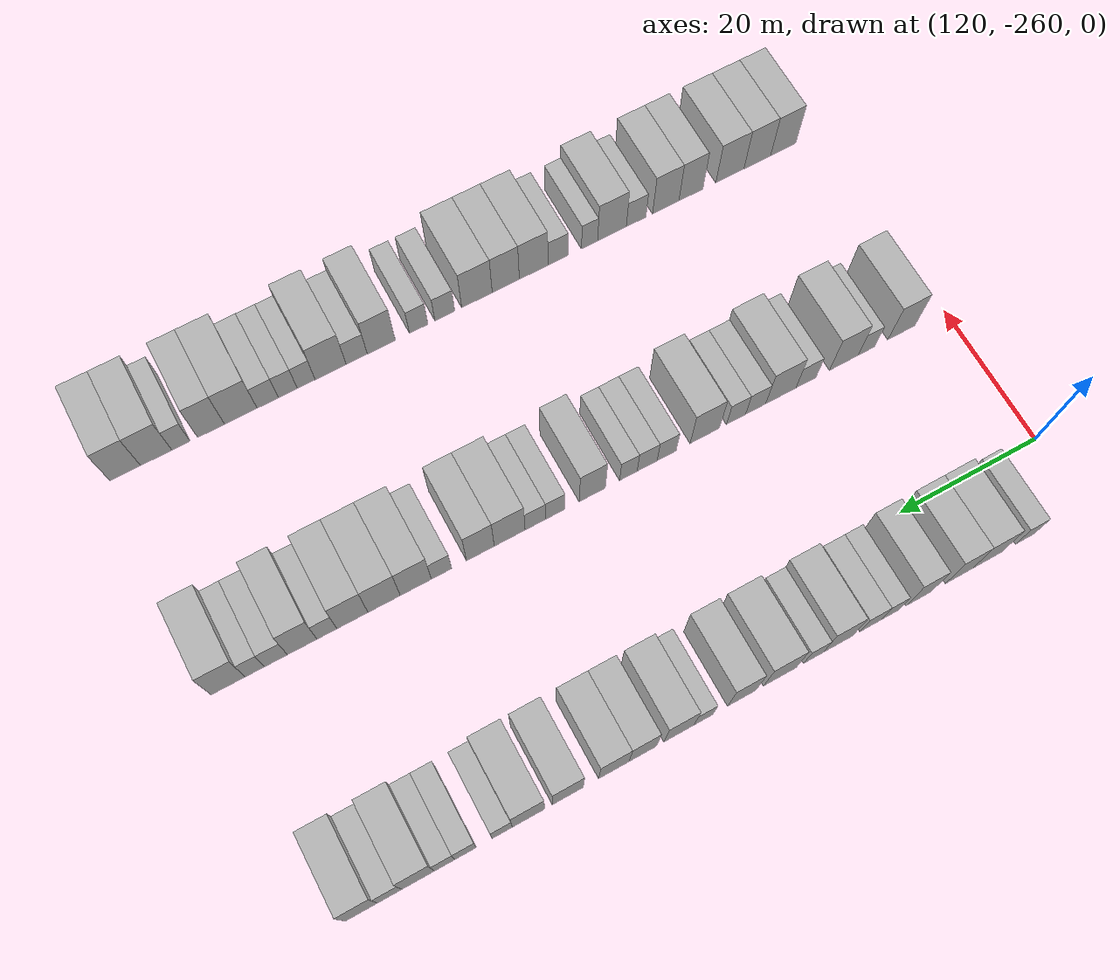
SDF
<sdf version="1.6">
 <world name="default">
  <model name="building_736">
   <static>1</static>
   <pose>115.0000 -251.4883 0 0.000000 0.000000 0.000000</pose>
   <link name="link">
    <pose>0 0 3.00 0 0 0</pose>
    <collision name="collision"><geometry><box><size>10.0000 2.7993 6.0000</size></box></geometry></collision>
    <visual name="visual">
     <cast_shadows>0</cast_shadows>
     <geometry><box><size>10.0000 2.7993 6.0000</size></box></geometry>
     <material>
      <script>
       <uri>model://HANNAS_wall/materials/scripts</uri>
       <uri>model://HANNAS_wall/materials/textures</uri>
       <name>vrc/HANNAS_wall</name>
      </script>
     </material>
    </visual>
   </link>
  </model>
  <model name="building_737">
   <static>1</static>
   <pose>115.0000 -245.9682 0 0.000000 0.000000 0.000000</pose>
   <link name="link">
    <pose>0 0 4.50 0 0 0</pose>
    <collision name="collision"><geometry><box><size>10.0000 4.2410 9.0000</size></box></geometry></collision>
    <visual name="visual">
     <cast_shadows>0</cast_shadows>
     <geometry><box><size>10.0000 4.2410 9.0000</size></box></geometry>
     <material>
      <script>
       <uri>model://HANNAS_wall/materials/scripts</uri>
       <uri>model://HANNAS_wall/materials/textures</uri>
       <name>vrc/HANNAS_wall</name>
      </script>
     </material>
    </visual>
   </link>
  </model>
  <model name="building_738">
   <static>1</static>
   <pose>115.0000 -241.8902 0 0.000000 0.000000 0.000000</pose>
   <link name="link">
    <pose>0 0 4.50 0 0 0</pose>
    <collision name="collision"><geometry><box><size>10.0000 3.9150 9.0000</size></box></geometry></collision>
    <visual name="visual">
     <cast_shadows>0</cast_shadows>
     <geometry><box><size>10.0000 3.9150 9.0000</size></box></geometry>
     <material>
      <script>
       <uri>model://HANNAS_wall/materials/scripts</uri>
       <uri>model://HANNAS_wall/materials/textures</uri>
       <name>vrc/HANNAS_wall</name>
      </script>
     </material>
    </visual>
   </link>
  </model>
  <model name="building_739">
   <static>1</static>
   <pose>115.0000 -236.1199 0 0.000000 0.000000 0.000000</pose>
   <link name="link">
    <pose>0 0 4.50 0 0 0</pose>
    <collision name="collision"><geometry><box><size>10.0000 3.6255 9.0000</size></box></geometry></collision>
    <visual name="visual">
     <cast_shadows>0</cast_shadows>
     <geometry><box><size>10.0000 3.6255 9.0000</size></box></geometry>
     <material>
      <script>
       <uri>model://HANNAS_wall/materials/scripts</uri>
       <uri>model://HANNAS_wall/materials/textures</uri>
       <name>vrc/HANNAS_wall</name>
      </script>
     </material>
    </visual>
   </link>
  </model>
  <model name="building_740">
   <static>1</static>
   <pose>115.0000 -232.0513 0 0.000000 0.000000 0.000000</pose>
   <link name="link">
    <pose>0 0 3.00 0 0 0</pose>
    <collision name="collision"><geometry><box><size>10.0000 2.5117 6.0000</size></box></geometry></collision>
    <visual name="visual">
     <cast_shadows>0</cast_shadows>
     <geometry><box><size>10.0000 2.5117 6.0000</size></box></geometry>
     <material>
      <script>
       <uri>model://HANNAS_wall/materials/scripts</uri>
       <uri>model://HANNAS_wall/materials/textures</uri>
       <name>vrc/HANNAS_wall</name>
      </script>
     </material>
    </visual>
   </link>
  </model>
  <model name="building_741">
   <static>1</static>
   <pose>115.0000 -229.2978 0 0.000000 0.000000 0.000000</pose>
   <link name="link">
    <pose>0 0 3.00 0 0 0</pose>
    <collision name="collision"><geometry><box><size>10.0000 2.9953 6.0000</size></box></geometry></collision>
    <visual name="visual">
     <cast_shadows>0</cast_shadows>
     <geometry><box><size>10.0000 2.9953 6.0000</size></box></geometry>
     <material>
      <script>
       <uri>model://HANNAS_wall/materials/scripts</uri>
       <uri>model://HANNAS_wall/materials/textures</uri>
       <name>vrc/HANNAS_wall</name>
      </script>
     </material>
    </visual>
   </link>
  </model>
  <model name="building_742">
   <static>1</static>
   <pose>115.0000 -224.7420 0 0.000000 0.000000 0.000000</pose>
   <link name="link">
    <pose>0 0 4.50 0 0 0</pose>
    <collision name="collision"><geometry><box><size>10.0000 4.1162 9.0000</size></box></geometry></collision>
    <visual name="visual">
     <cast_shadows>0</cast_shadows>
     <geometry><box><size>10.0000 4.1162 9.0000</size></box></geometry>
     <material>
      <script>
       <uri>model://HANNAS_wall/materials/scripts</uri>
       <uri>model://HANNAS_wall/materials/textures</uri>
       <name>vrc/HANNAS_wall</name>
      </script>
     </material>
    </visual>
   </link>
  </model>
  <model name="building_743">
   <static>1</static>
   <pose>115.0000 -221.3225 0 0.000000 0.000000 0.000000</pose>
   <link name="link">
    <pose>0 0 3.00 0 0 0</pose>
    <collision name="collision"><geometry><box><size>10.0000 2.7228 6.0000</size></box></geometry></collision>
    <visual name="visual">
     <cast_shadows>0</cast_shadows>
     <geometry><box><size>10.0000 2.7228 6.0000</size></box></geometry>
     <material>
      <script>
       <uri>model://HANNAS_wall/materials/scripts</uri>
       <uri>model://HANNAS_wall/materials/textures</uri>
       <name>vrc/HANNAS_wall</name>
      </script>
     </material>
    </visual>
   </link>
  </model>
  <model name="building_744">
   <static>1</static>
   <pose>115.0000 -216.7125 0 0.000000 0.000000 0.000000</pose>
   <link name="link">
    <pose>0 0 4.50 0 0 0</pose>
    <collision name="collision"><geometry><box><size>10.0000 4.4972 9.0000</size></box></geometry></collision>
    <visual name="visual">
     <cast_shadows>0</cast_shadows>
     <geometry><box><size>10.0000 4.4972 9.0000</size></box></geometry>
     <material>
      <script>
       <uri>model://HANNAS_wall/materials/scripts</uri>
       <uri>model://HANNAS_wall/materials/textures</uri>
       <name>vrc/HANNAS_wall</name>
      </script>
     </material>
    </visual>
   </link>
  </model>
  <model name="building_745">
   <static>1</static>
   <pose>115.0000 -211.5222 0 0.000000 0.000000 0.000000</pose>
   <link name="link">
    <pose>0 0 4.50 0 0 0</pose>
    <collision name="collision"><geometry><box><size>10.0000 3.8834 9.0000</size></box></geometry></collision>
    <visual name="visual">
     <cast_shadows>0</cast_shadows>
     <geometry><box><size>10.0000 3.8834 9.0000</size></box></geometry>
     <material>
      <script>
       <uri>model://HANNAS_wall/materials/scripts</uri>
       <uri>model://HANNAS_wall/materials/textures</uri>
       <name>vrc/HANNAS_wall</name>
      </script>
     </material>
    </visual>
   </link>
  </model>
  <model name="building_746">
   <static>1</static>
   <pose>115.0000 -206.3091 0 0.000000 0.000000 0.000000</pose>
   <link name="link">
    <pose>0 0 3.00 0 0 0</pose>
    <collision name="collision"><geometry><box><size>10.0000 2.5426 6.0000</size></box></geometry></collision>
    <visual name="visual">
     <cast_shadows>0</cast_shadows>
     <geometry><box><size>10.0000 2.5426 6.0000</size></box></geometry>
     <material>
      <script>
       <uri>model://HANNAS_wall/materials/scripts</uri>
       <uri>model://HANNAS_wall/materials/textures</uri>
       <name>vrc/HANNAS_wall</name>
      </script>
     </material>
    </visual>
   </link>
  </model>
  <model name="building_747">
   <static>1</static>
   <pose>115.0000 -203.0423 0 0.000000 0.000000 0.000000</pose>
   <link name="link">
    <pose>0 0 4.50 0 0 0</pose>
    <collision name="collision"><geometry><box><size>10.0000 3.9910 9.0000</size></box></geometry></collision>
    <visual name="visual">
     <cast_shadows>0</cast_shadows>
     <geometry><box><size>10.0000 3.9910 9.0000</size></box></geometry>
     <material>
      <script>
       <uri>model://HANNAS_wall/materials/scripts</uri>
       <uri>model://HANNAS_wall/materials/textures</uri>
       <name>vrc/HANNAS_wall</name>
      </script>
     </material>
    </visual>
   </link>
  </model>
  <model name="building_748">
   <static>1</static>
   <pose>115.0000 -198.2267 0 0.000000 0.000000 0.000000</pose>
   <link name="link">
    <pose>0 0 4.50 0 0 0</pose>
    <collision name="collision"><geometry><box><size>10.0000 3.6402 9.0000</size></box></geometry></collision>
    <visual name="visual">
     <cast_shadows>0</cast_shadows>
     <geometry><box><size>10.0000 3.6402 9.0000</size></box></geometry>
     <material>
      <script>
       <uri>model://HANNAS_wall/materials/scripts</uri>
       <uri>model://HANNAS_wall/materials/textures</uri>
       <name>vrc/HANNAS_wall</name>
      </script>
     </material>
    </visual>
   </link>
  </model>
  <model name="building_749">
   <static>1</static>
   <pose>115.0000 -194.4236 0 0.000000 0.000000 0.000000</pose>
   <link name="link">
    <pose>0 0 4.50 0 0 0</pose>
    <collision name="collision"><geometry><box><size>10.0000 3.9661 9.0000</size></box></geometry></collision>
    <visual name="visual">
     <cast_shadows>0</cast_shadows>
     <geometry><box><size>10.0000 3.9661 9.0000</size></box></geometry>
     <material>
      <script>
       <uri>model://HANNAS_wall/materials/scripts</uri>
       <uri>model://HANNAS_wall/materials/textures</uri>
       <name>vrc/HANNAS_wall</name>
      </script>
     </material>
    </visual>
   </link>
  </model>
  <model name="building_750">
   <static>1</static>
   <pose>115.0000 -188.4363 0 0.000000 0.000000 0.000000</pose>
   <link name="link">
    <pose>0 0 4.50 0 0 0</pose>
    <collision name="collision"><geometry><box><size>10.0000 4.0085 9.0000</size></box></geometry></collision>
    <visual name="visual">
     <cast_shadows>0</cast_shadows>
     <geometry><box><size>10.0000 4.0085 9.0000</size></box></geometry>
     <material>
      <script>
       <uri>model://HANNAS_wall/materials/scripts</uri>
       <uri>model://HANNAS_wall/materials/textures</uri>
       <name>vrc/HANNAS_wall</name>
      </script>
     </material>
    </visual>
   </link>
  </model>
  <model name="building_751">
   <static>1</static>
   <pose>115.0000 -183.3625 0 0.000000 0.000000 0.000000</pose>
   <link name="link">
    <pose>0 0 4.50 0 0 0</pose>
    <collision name="collision"><geometry><box><size>10.0000 4.1390 9.0000</size></box></geometry></collision>
    <visual name="visual">
     <cast_shadows>0</cast_shadows>
     <geometry><box><size>10.0000 4.1390 9.0000</size></box></geometry>
     <material>
      <script>
       <uri>model://HANNAS_wall/materials/scripts</uri>
       <uri>model://HANNAS_wall/materials/textures</uri>
       <name>vrc/HANNAS_wall</name>
      </script>
     </material>
    </visual>
   </link>
  </model>
  <model name="building_752">
   <static>1</static>
   <pose>115.0000 -180.0162 0 0.000000 0.000000 0.000000</pose>
   <link name="link">
    <pose>0 0 3.00 0 0 0</pose>
    <collision name="collision"><geometry><box><size>10.0000 2.5536 6.0000</size></box></geometry></collision>
    <visual name="visual">
     <cast_shadows>0</cast_shadows>
     <geometry><box><size>10.0000 2.5536 6.0000</size></box></geometry>
     <material>
      <script>
       <uri>model://HANNAS_wall/materials/scripts</uri>
       <uri>model://HANNAS_wall/materials/textures</uri>
       <name>vrc/HANNAS_wall</name>
      </script>
     </material>
    </visual>
   </link>
  </model>
  <model name="building_753">
   <static>1</static>
   <pose>115.0000 -175.3833 0 0.000000 0.000000 0.000000</pose>
   <link name="link">
    <pose>0 0 3.00 0 0 0</pose>
    <collision name="collision"><geometry><box><size>10.0000 2.7121 6.0000</size></box></geometry></collision>
    <visual name="visual">
     <cast_shadows>0</cast_shadows>
     <geometry><box><size>10.0000 2.7121 6.0000</size></box></geometry>
     <material>
      <script>
       <uri>model://HANNAS_wall/materials/scripts</uri>
       <uri>model://HANNAS_wall/materials/textures</uri>
       <name>vrc/HANNAS_wall</name>
      </script>
     </material>
    </visual>
   </link>
  </model>
  <model name="building_754">
   <static>1</static>
   <pose>115.0000 -172.7424 0 0.000000 0.000000 0.000000</pose>
   <link name="link">
    <pose>0 0 3.00 0 0 0</pose>
    <collision name="collision"><geometry><box><size>10.0000 2.5696 6.0000</size></box></geometry></collision>
    <visual name="visual">
     <cast_shadows>0</cast_shadows>
     <geometry><box><size>10.0000 2.5696 6.0000</size></box></geometry>
     <material>
      <script>
       <uri>model://HANNAS_wall/materials/scripts</uri>
       <uri>model://HANNAS_wall/materials/textures</uri>
       <name>vrc/HANNAS_wall</name>
      </script>
     </material>
    </visual>
   </link>
  </model>
  <model name="building_755">
   <static>1</static>
   <pose>115.0000 -169.4318 0 0.000000 0.000000 0.000000</pose>
   <link name="link">
    <pose>0 0 4.50 0 0 0</pose>
    <collision name="collision"><geometry><box><size>10.0000 4.0517 9.0000</size></box></geometry></collision>
    <visual name="visual">
     <cast_shadows>0</cast_shadows>
     <geometry><box><size>10.0000 4.0517 9.0000</size></box></geometry>
     <material>
      <script>
       <uri>model://HANNAS_wall/materials/scripts</uri>
       <uri>model://HANNAS_wall/materials/textures</uri>
       <name>vrc/HANNAS_wall</name>
      </script>
     </material>
    </visual>
   </link>
  </model>
  <model name="building_756">
   <static>1</static>
   <pose>115.0000 -165.9151 0 0.000000 0.000000 0.000000</pose>
   <link name="link">
    <pose>0 0 3.00 0 0 0</pose>
    <collision name="collision"><geometry><box><size>10.0000 2.9816 6.0000</size></box></geometry></collision>
    <visual name="visual">
     <cast_shadows>0</cast_shadows>
     <geometry><box><size>10.0000 2.9816 6.0000</size></box></geometry>
     <material>
      <script>
       <uri>model://HANNAS_wall/materials/scripts</uri>
       <uri>model://HANNAS_wall/materials/textures</uri>
       <name>vrc/HANNAS_wall</name>
      </script>
     </material>
    </visual>
   </link>
  </model>
  <model name="building_757">
   <static>1</static>
   <pose>115.0000 -162.4372 0 0.000000 0.000000 0.000000</pose>
   <link name="link">
    <pose>0 0 4.50 0 0 0</pose>
    <collision name="collision"><geometry><box><size>10.0000 3.9742 9.0000</size></box></geometry></collision>
    <visual name="visual">
     <cast_shadows>0</cast_shadows>
     <geometry><box><size>10.0000 3.9742 9.0000</size></box></geometry>
     <material>
      <script>
       <uri>model://HANNAS_wall/materials/scripts</uri>
       <uri>model://HANNAS_wall/materials/textures</uri>
       <name>vrc/HANNAS_wall</name>
      </script>
     </material>
    </visual>
   </link>
  </model>
  <model name="building_964">
   <static>1</static>
   <pose>145.0000 -253.4555 0 0.000000 0.000000 0.000000</pose>
   <link name="link">
    <pose>0 0 4.50 0 0 0</pose>
    <collision name="collision"><geometry><box><size>10.0000 4.1000 9.0000</size></box></geometry></collision>
    <visual name="visual">
     <cast_shadows>0</cast_shadows>
     <geometry><box><size>10.0000 4.1000 9.0000</size></box></geometry>
     <material>
      <script>
       <uri>model://HANNAS_wall/materials/scripts</uri>
       <uri>model://HANNAS_wall/materials/textures</uri>
       <name>vrc/HANNAS_wall</name>
      </script>
     </material>
    </visual>
   </link>
  </model>
  <model name="building_965">
   <static>1</static>
   <pose>145.0000 -248.1410 0 0.000000 0.000000 0.000000</pose>
   <link name="link">
    <pose>0 0 3.00 0 0 0</pose>
    <collision name="collision"><geometry><box><size>10.0000 2.5292 6.0000</size></box></geometry></collision>
    <visual name="visual">
     <cast_shadows>0</cast_shadows>
     <geometry><box><size>10.0000 2.5292 6.0000</size></box></geometry>
     <material>
      <script>
       <uri>model://HANNAS_wall/materials/scripts</uri>
       <uri>model://HANNAS_wall/materials/textures</uri>
       <name>vrc/HANNAS_wall</name>
      </script>
     </material>
    </visual>
   </link>
  </model>
  <model name="building_966">
   <static>1</static>
   <pose>145.0000 -244.7566 0 0.000000 0.000000 0.000000</pose>
   <link name="link">
    <pose>0 0 4.50 0 0 0</pose>
    <collision name="collision"><geometry><box><size>10.0000 4.2397 9.0000</size></box></geometry></collision>
    <visual name="visual">
     <cast_shadows>0</cast_shadows>
     <geometry><box><size>10.0000 4.2397 9.0000</size></box></geometry>
     <material>
      <script>
       <uri>model://HANNAS_wall/materials/scripts</uri>
       <uri>model://HANNAS_wall/materials/textures</uri>
       <name>vrc/HANNAS_wall</name>
      </script>
     </material>
    </visual>
   </link>
  </model>
  <model name="building_967">
   <static>1</static>
   <pose>145.0000 -239.1468 0 0.000000 0.000000 0.000000</pose>
   <link name="link">
    <pose>0 0 3.00 0 0 0</pose>
    <collision name="collision"><geometry><box><size>10.0000 2.9798 6.0000</size></box></geometry></collision>
    <visual name="visual">
     <cast_shadows>0</cast_shadows>
     <geometry><box><size>10.0000 2.9798 6.0000</size></box></geometry>
     <material>
      <script>
       <uri>model://HANNAS_wall/materials/scripts</uri>
       <uri>model://HANNAS_wall/materials/textures</uri>
       <name>vrc/HANNAS_wall</name>
      </script>
     </material>
    </visual>
   </link>
  </model>
  <model name="building_968">
   <static>1</static>
   <pose>145.0000 -235.4348 0 0.000000 0.000000 0.000000</pose>
   <link name="link">
    <pose>0 0 4.50 0 0 0</pose>
    <collision name="collision"><geometry><box><size>10.0000 4.4443 9.0000</size></box></geometry></collision>
    <visual name="visual">
     <cast_shadows>0</cast_shadows>
     <geometry><box><size>10.0000 4.4443 9.0000</size></box></geometry>
     <material>
      <script>
       <uri>model://HANNAS_wall/materials/scripts</uri>
       <uri>model://HANNAS_wall/materials/textures</uri>
       <name>vrc/HANNAS_wall</name>
      </script>
     </material>
    </visual>
   </link>
  </model>
  <model name="building_969">
   <static>1</static>
   <pose>145.0000 -231.7469 0 0.000000 0.000000 0.000000</pose>
   <link name="link">
    <pose>0 0 3.00 0 0 0</pose>
    <collision name="collision"><geometry><box><size>10.0000 2.9314 6.0000</size></box></geometry></collision>
    <visual name="visual">
     <cast_shadows>0</cast_shadows>
     <geometry><box><size>10.0000 2.9314 6.0000</size></box></geometry>
     <material>
      <script>
       <uri>model://HANNAS_wall/materials/scripts</uri>
       <uri>model://HANNAS_wall/materials/textures</uri>
       <name>vrc/HANNAS_wall</name>
      </script>
     </material>
    </visual>
   </link>
  </model>
  <model name="building_970">
   <static>1</static>
   <pose>145.0000 -228.8900 0 0.000000 0.000000 0.000000</pose>
   <link name="link">
    <pose>0 0 3.00 0 0 0</pose>
    <collision name="collision"><geometry><box><size>10.0000 2.7826 6.0000</size></box></geometry></collision>
    <visual name="visual">
     <cast_shadows>0</cast_shadows>
     <geometry><box><size>10.0000 2.7826 6.0000</size></box></geometry>
     <material>
      <script>
       <uri>model://HANNAS_wall/materials/scripts</uri>
       <uri>model://HANNAS_wall/materials/textures</uri>
       <name>vrc/HANNAS_wall</name>
      </script>
     </material>
    </visual>
   </link>
  </model>
  <model name="building_971">
   <static>1</static>
   <pose>145.0000 -224.3807 0 0.000000 0.000000 0.000000</pose>
   <link name="link">
    <pose>0 0 4.50 0 0 0</pose>
    <collision name="collision"><geometry><box><size>10.0000 4.2361 9.0000</size></box></geometry></collision>
    <visual name="visual">
     <cast_shadows>0</cast_shadows>
     <geometry><box><size>10.0000 4.2361 9.0000</size></box></geometry>
     <material>
      <script>
       <uri>model://HANNAS_wall/materials/scripts</uri>
       <uri>model://HANNAS_wall/materials/textures</uri>
       <name>vrc/HANNAS_wall</name>
      </script>
     </material>
    </visual>
   </link>
  </model>
  <model name="building_972">
   <static>1</static>
   <pose>145.0000 -218.8981 0 0.000000 0.000000 0.000000</pose>
   <link name="link">
    <pose>0 0 3.00 0 0 0</pose>
    <collision name="collision"><geometry><box><size>10.0000 2.7290 6.0000</size></box></geometry></collision>
    <visual name="visual">
     <cast_shadows>0</cast_shadows>
     <geometry><box><size>10.0000 2.7290 6.0000</size></box></geometry>
     <material>
      <script>
       <uri>model://HANNAS_wall/materials/scripts</uri>
       <uri>model://HANNAS_wall/materials/textures</uri>
       <name>vrc/HANNAS_wall</name>
      </script>
     </material>
    </visual>
   </link>
  </model>
  <model name="building_973">
   <static>1</static>
   <pose>145.0000 -216.1267 0 0.000000 0.000000 0.000000</pose>
   <link name="link">
    <pose>0 0 3.00 0 0 0</pose>
    <collision name="collision"><geometry><box><size>10.0000 2.8139 6.0000</size></box></geometry></collision>
    <visual name="visual">
     <cast_shadows>0</cast_shadows>
     <geometry><box><size>10.0000 2.8139 6.0000</size></box></geometry>
     <material>
      <script>
       <uri>model://HANNAS_wall/materials/scripts</uri>
       <uri>model://HANNAS_wall/materials/textures</uri>
       <name>vrc/HANNAS_wall</name>
      </script>
     </material>
    </visual>
   </link>
  </model>
  <model name="building_974">
   <static>1</static>
   <pose>145.0000 -213.4760 0 0.000000 0.000000 0.000000</pose>
   <link name="link">
    <pose>0 0 3.00 0 0 0</pose>
    <collision name="collision"><geometry><box><size>10.0000 2.4874 6.0000</size></box></geometry></collision>
    <visual name="visual">
     <cast_shadows>0</cast_shadows>
     <geometry><box><size>10.0000 2.4874 6.0000</size></box></geometry>
     <material>
      <script>
       <uri>model://HANNAS_wall/materials/scripts</uri>
       <uri>model://HANNAS_wall/materials/textures</uri>
       <name>vrc/HANNAS_wall</name>
      </script>
     </material>
    </visual>
   </link>
  </model>
  <model name="building_975">
   <static>1</static>
   <pose>145.0000 -208.4078 0 0.000000 0.000000 0.000000</pose>
   <link name="link">
    <pose>0 0 4.50 0 0 0</pose>
    <collision name="collision"><geometry><box><size>10.0000 3.6491 9.0000</size></box></geometry></collision>
    <visual name="visual">
     <cast_shadows>0</cast_shadows>
     <geometry><box><size>10.0000 3.6491 9.0000</size></box></geometry>
     <material>
      <script>
       <uri>model://HANNAS_wall/materials/scripts</uri>
       <uri>model://HANNAS_wall/materials/textures</uri>
       <name>vrc/HANNAS_wall</name>
      </script>
     </material>
    </visual>
   </link>
  </model>
  <model name="building_976">
   <static>1</static>
   <pose>145.0000 -203.2657 0 0.000000 0.000000 0.000000</pose>
   <link name="link">
    <pose>0 0 3.00 0 0 0</pose>
    <collision name="collision"><geometry><box><size>10.0000 2.6350 6.0000</size></box></geometry></collision>
    <visual name="visual">
     <cast_shadows>0</cast_shadows>
     <geometry><box><size>10.0000 2.6350 6.0000</size></box></geometry>
     <material>
      <script>
       <uri>model://HANNAS_wall/materials/scripts</uri>
       <uri>model://HANNAS_wall/materials/textures</uri>
       <name>vrc/HANNAS_wall</name>
      </script>
     </material>
    </visual>
   </link>
  </model>
  <model name="building_977">
   <static>1</static>
   <pose>145.0000 -200.5261 0 0.000000 0.000000 0.000000</pose>
   <link name="link">
    <pose>0 0 3.00 0 0 0</pose>
    <collision name="collision"><geometry><box><size>10.0000 2.8440 6.0000</size></box></geometry></collision>
    <visual name="visual">
     <cast_shadows>0</cast_shadows>
     <geometry><box><size>10.0000 2.8440 6.0000</size></box></geometry>
     <material>
      <script>
       <uri>model://HANNAS_wall/materials/scripts</uri>
       <uri>model://HANNAS_wall/materials/textures</uri>
       <name>vrc/HANNAS_wall</name>
      </script>
     </material>
    </visual>
   </link>
  </model>
  <model name="building_978">
   <static>1</static>
   <pose>145.0000 -197.0010 0 0.000000 0.000000 0.000000</pose>
   <link name="link">
    <pose>0 0 4.50 0 0 0</pose>
    <collision name="collision"><geometry><box><size>10.0000 4.2063 9.0000</size></box></geometry></collision>
    <visual name="visual">
     <cast_shadows>0</cast_shadows>
     <geometry><box><size>10.0000 4.2063 9.0000</size></box></geometry>
     <material>
      <script>
       <uri>model://HANNAS_wall/materials/scripts</uri>
       <uri>model://HANNAS_wall/materials/textures</uri>
       <name>vrc/HANNAS_wall</name>
      </script>
     </material>
    </visual>
   </link>
  </model>
  <model name="building_979">
   <static>1</static>
   <pose>145.0000 -193.0093 0 0.000000 0.000000 0.000000</pose>
   <link name="link">
    <pose>0 0 4.50 0 0 0</pose>
    <collision name="collision"><geometry><box><size>10.0000 3.7771 9.0000</size></box></geometry></collision>
    <visual name="visual">
     <cast_shadows>0</cast_shadows>
     <geometry><box><size>10.0000 3.7771 9.0000</size></box></geometry>
     <material>
      <script>
       <uri>model://HANNAS_wall/materials/scripts</uri>
       <uri>model://HANNAS_wall/materials/textures</uri>
       <name>vrc/HANNAS_wall</name>
      </script>
     </material>
    </visual>
   </link>
  </model>
  <model name="building_980">
   <static>1</static>
   <pose>145.0000 -187.7519 0 0.000000 0.000000 0.000000</pose>
   <link name="link">
    <pose>0 0 3.00 0 0 0</pose>
    <collision name="collision"><geometry><box><size>10.0000 2.7378 6.0000</size></box></geometry></collision>
    <visual name="visual">
     <cast_shadows>0</cast_shadows>
     <geometry><box><size>10.0000 2.7378 6.0000</size></box></geometry>
     <material>
      <script>
       <uri>model://HANNAS_wall/materials/scripts</uri>
       <uri>model://HANNAS_wall/materials/textures</uri>
       <name>vrc/HANNAS_wall</name>
      </script>
     </material>
    </visual>
   </link>
  </model>
  <model name="building_981">
   <static>1</static>
   <pose>145.0000 -184.3130 0 0.000000 0.000000 0.000000</pose>
   <link name="link">
    <pose>0 0 4.50 0 0 0</pose>
    <collision name="collision"><geometry><box><size>10.0000 4.1400 9.0000</size></box></geometry></collision>
    <visual name="visual">
     <cast_shadows>0</cast_shadows>
     <geometry><box><size>10.0000 4.1400 9.0000</size></box></geometry>
     <material>
      <script>
       <uri>model://HANNAS_wall/materials/scripts</uri>
       <uri>model://HANNAS_wall/materials/textures</uri>
       <name>vrc/HANNAS_wall</name>
      </script>
     </material>
    </visual>
   </link>
  </model>
  <model name="building_982">
   <static>1</static>
   <pose>145.0000 -180.1031 0 0.000000 0.000000 0.000000</pose>
   <link name="link">
    <pose>0 0 4.50 0 0 0</pose>
    <collision name="collision"><geometry><box><size>10.0000 4.2797 9.0000</size></box></geometry></collision>
    <visual name="visual">
     <cast_shadows>0</cast_shadows>
     <geometry><box><size>10.0000 4.2797 9.0000</size></box></geometry>
     <material>
      <script>
       <uri>model://HANNAS_wall/materials/scripts</uri>
       <uri>model://HANNAS_wall/materials/textures</uri>
       <name>vrc/HANNAS_wall</name>
      </script>
     </material>
    </visual>
   </link>
  </model>
  <model name="building_983">
   <static>1</static>
   <pose>145.0000 -175.9141 0 0.000000 0.000000 0.000000</pose>
   <link name="link">
    <pose>0 0 4.50 0 0 0</pose>
    <collision name="collision"><geometry><box><size>10.0000 4.0984 9.0000</size></box></geometry></collision>
    <visual name="visual">
     <cast_shadows>0</cast_shadows>
     <geometry><box><size>10.0000 4.0984 9.0000</size></box></geometry>
     <material>
      <script>
       <uri>model://HANNAS_wall/materials/scripts</uri>
       <uri>model://HANNAS_wall/materials/textures</uri>
       <name>vrc/HANNAS_wall</name>
      </script>
     </material>
    </visual>
   </link>
  </model>
  <model name="building_984">
   <static>1</static>
   <pose>145.0000 -172.5696 0 0.000000 0.000000 0.000000</pose>
   <link name="link">
    <pose>0 0 3.00 0 0 0</pose>
    <collision name="collision"><geometry><box><size>10.0000 2.5905 6.0000</size></box></geometry></collision>
    <visual name="visual">
     <cast_shadows>0</cast_shadows>
     <geometry><box><size>10.0000 2.5905 6.0000</size></box></geometry>
     <material>
      <script>
       <uri>model://HANNAS_wall/materials/scripts</uri>
       <uri>model://HANNAS_wall/materials/textures</uri>
       <name>vrc/HANNAS_wall</name>
      </script>
     </material>
    </visual>
   </link>
  </model>
  <model name="building_985">
   <static>1</static>
   <pose>145.0000 -169.3593 0 0.000000 0.000000 0.000000</pose>
   <link name="link">
    <pose>0 0 4.50 0 0 0</pose>
    <collision name="collision"><geometry><box><size>10.0000 3.8302 9.0000</size></box></geometry></collision>
    <visual name="visual">
     <cast_shadows>0</cast_shadows>
     <geometry><box><size>10.0000 3.8302 9.0000</size></box></geometry>
     <material>
      <script>
       <uri>model://HANNAS_wall/materials/scripts</uri>
       <uri>model://HANNAS_wall/materials/textures</uri>
       <name>vrc/HANNAS_wall</name>
      </script>
     </material>
    </visual>
   </link>
  </model>
  <model name="building_986">
   <static>1</static>
   <pose>145.0000 -165.9748 0 0.000000 0.000000 0.000000</pose>
   <link name="link">
    <pose>0 0 3.00 0 0 0</pose>
    <collision name="collision"><geometry><box><size>10.0000 2.9387 6.0000</size></box></geometry></collision>
    <visual name="visual">
     <cast_shadows>0</cast_shadows>
     <geometry><box><size>10.0000 2.9387 6.0000</size></box></geometry>
     <material>
      <script>
       <uri>model://HANNAS_wall/materials/scripts</uri>
       <uri>model://HANNAS_wall/materials/textures</uri>
       <name>vrc/HANNAS_wall</name>
      </script>
     </material>
    </visual>
   </link>
  </model>
  <model name="building_987">
   <static>1</static>
   <pose>145.0000 -163.2618 0 0.000000 0.000000 0.000000</pose>
   <link name="link">
    <pose>0 0 3.00 0 0 0</pose>
    <collision name="collision"><geometry><box><size>10.0000 2.4875 6.0000</size></box></geometry></collision>
    <visual name="visual">
     <cast_shadows>0</cast_shadows>
     <geometry><box><size>10.0000 2.4875 6.0000</size></box></geometry>
     <material>
      <script>
       <uri>model://HANNAS_wall/materials/scripts</uri>
       <uri>model://HANNAS_wall/materials/textures</uri>
       <name>vrc/HANNAS_wall</name>
      </script>
     </material>
    </visual>
   </link>
  </model>
  <model name="building_988">
   <static>1</static>
   <pose>145.0000 -159.8396 0 0.000000 0.000000 0.000000</pose>
   <link name="link">
    <pose>0 0 4.50 0 0 0</pose>
    <collision name="collision"><geometry><box><size>10.0000 4.3568 9.0000</size></box></geometry></collision>
    <visual name="visual">
     <cast_shadows>0</cast_shadows>
     <geometry><box><size>10.0000 4.3568 9.0000</size></box></geometry>
     <material>
      <script>
       <uri>model://HANNAS_wall/materials/scripts</uri>
       <uri>model://HANNAS_wall/materials/textures</uri>
       <name>vrc/HANNAS_wall</name>
      </script>
     </material>
    </visual>
   </link>
  </model>
  <model name="building_1197">
   <static>1</static>
   <pose>175.0000 -254.4151 0 0.000000 0.000000 0.000000</pose>
   <link name="link">
    <pose>0 0 4.50 0 0 0</pose>
    <collision name="collision"><geometry><box><size>10.0000 3.9349 9.0000</size></box></geometry></collision>
    <visual name="visual">
     <cast_shadows>0</cast_shadows>
     <geometry><box><size>10.0000 3.9349 9.0000</size></box></geometry>
     <material>
      <script>
       <uri>model://HANNAS_wall/materials/scripts</uri>
       <uri>model://HANNAS_wall/materials/textures</uri>
       <name>vrc/HANNAS_wall</name>
      </script>
     </material>
    </visual>
   </link>
  </model>
  <model name="building_1198">
   <static>1</static>
   <pose>175.0000 -250.3724 0 0.000000 0.000000 0.000000</pose>
   <link name="link">
    <pose>0 0 4.50 0 0 0</pose>
    <collision name="collision"><geometry><box><size>10.0000 4.1504 9.0000</size></box></geometry></collision>
    <visual name="visual">
     <cast_shadows>0</cast_shadows>
     <geometry><box><size>10.0000 4.1504 9.0000</size></box></geometry>
     <material>
      <script>
       <uri>model://HANNAS_wall/materials/scripts</uri>
       <uri>model://HANNAS_wall/materials/textures</uri>
       <name>vrc/HANNAS_wall</name>
      </script>
     </material>
    </visual>
   </link>
  </model>
  <model name="building_1199">
   <static>1</static>
   <pose>175.0000 -246.1227 0 0.000000 0.000000 0.000000</pose>
   <link name="link">
    <pose>0 0 4.50 0 0 0</pose>
    <collision name="collision"><geometry><box><size>10.0000 4.3491 9.0000</size></box></geometry></collision>
    <visual name="visual">
     <cast_shadows>0</cast_shadows>
     <geometry><box><size>10.0000 4.3491 9.0000</size></box></geometry>
     <material>
      <script>
       <uri>model://HANNAS_wall/materials/scripts</uri>
       <uri>model://HANNAS_wall/materials/textures</uri>
       <name>vrc/HANNAS_wall</name>
      </script>
     </material>
    </visual>
   </link>
  </model>
  <model name="building_1200">
   <static>1</static>
   <pose>175.0000 -240.1098 0 0.000000 0.000000 0.000000</pose>
   <link name="link">
    <pose>0 0 4.50 0 0 0</pose>
    <collision name="collision"><geometry><box><size>10.0000 3.6765 9.0000</size></box></geometry></collision>
    <visual name="visual">
     <cast_shadows>0</cast_shadows>
     <geometry><box><size>10.0000 3.6765 9.0000</size></box></geometry>
     <material>
      <script>
       <uri>model://HANNAS_wall/materials/scripts</uri>
       <uri>model://HANNAS_wall/materials/textures</uri>
       <name>vrc/HANNAS_wall</name>
      </script>
     </material>
    </visual>
   </link>
  </model>
  <model name="building_1201">
   <static>1</static>
   <pose>175.0000 -236.2667 0 0.000000 0.000000 0.000000</pose>
   <link name="link">
    <pose>0 0 4.50 0 0 0</pose>
    <collision name="collision"><geometry><box><size>10.0000 4.0096 9.0000</size></box></geometry></collision>
    <visual name="visual">
     <cast_shadows>0</cast_shadows>
     <geometry><box><size>10.0000 4.0096 9.0000</size></box></geometry>
     <material>
      <script>
       <uri>model://HANNAS_wall/materials/scripts</uri>
       <uri>model://HANNAS_wall/materials/textures</uri>
       <name>vrc/HANNAS_wall</name>
      </script>
     </material>
    </visual>
   </link>
  </model>
  <model name="building_1202">
   <static>1</static>
   <pose>175.0000 -231.7850 0 0.000000 0.000000 0.000000</pose>
   <link name="link">
    <pose>0 0 3.00 0 0 0</pose>
    <collision name="collision"><geometry><box><size>10.0000 2.9538 6.0000</size></box></geometry></collision>
    <visual name="visual">
     <cast_shadows>0</cast_shadows>
     <geometry><box><size>10.0000 2.9538 6.0000</size></box></geometry>
     <material>
      <script>
       <uri>model://HANNAS_wall/materials/scripts</uri>
       <uri>model://HANNAS_wall/materials/textures</uri>
       <name>vrc/HANNAS_wall</name>
      </script>
     </material>
    </visual>
   </link>
  </model>
  <model name="building_1203">
   <static>1</static>
   <pose>175.0000 -228.1520 0 0.000000 0.000000 0.000000</pose>
   <link name="link">
    <pose>0 0 4.50 0 0 0</pose>
    <collision name="collision"><geometry><box><size>10.0000 4.3121 9.0000</size></box></geometry></collision>
    <visual name="visual">
     <cast_shadows>0</cast_shadows>
     <geometry><box><size>10.0000 4.3121 9.0000</size></box></geometry>
     <material>
      <script>
       <uri>model://HANNAS_wall/materials/scripts</uri>
       <uri>model://HANNAS_wall/materials/textures</uri>
       <name>vrc/HANNAS_wall</name>
      </script>
     </material>
    </visual>
   </link>
  </model>
  <model name="building_1204">
   <static>1</static>
   <pose>175.0000 -224.7950 0 0.000000 0.000000 0.000000</pose>
   <link name="link">
    <pose>0 0 3.00 0 0 0</pose>
    <collision name="collision"><geometry><box><size>10.0000 2.4018 6.0000</size></box></geometry></collision>
    <visual name="visual">
     <cast_shadows>0</cast_shadows>
     <geometry><box><size>10.0000 2.4018 6.0000</size></box></geometry>
     <material>
      <script>
       <uri>model://HANNAS_wall/materials/scripts</uri>
       <uri>model://HANNAS_wall/materials/textures</uri>
       <name>vrc/HANNAS_wall</name>
      </script>
     </material>
    </visual>
   </link>
  </model>
  <model name="building_1205">
   <static>1</static>
   <pose>175.0000 -220.1172 0 0.000000 0.000000 0.000000</pose>
   <link name="link">
    <pose>0 0 3.00 0 0 0</pose>
    <collision name="collision"><geometry><box><size>10.0000 2.9538 6.0000</size></box></geometry></collision>
    <visual name="visual">
     <cast_shadows>0</cast_shadows>
     <geometry><box><size>10.0000 2.9538 6.0000</size></box></geometry>
     <material>
      <script>
       <uri>model://HANNAS_wall/materials/scripts</uri>
       <uri>model://HANNAS_wall/materials/textures</uri>
       <name>vrc/HANNAS_wall</name>
      </script>
     </material>
    </visual>
   </link>
  </model>
  <model name="building_1206">
   <static>1</static>
   <pose>175.0000 -216.5382 0 0.000000 0.000000 0.000000</pose>
   <link name="link">
    <pose>0 0 4.50 0 0 0</pose>
    <collision name="collision"><geometry><box><size>10.0000 4.2043 9.0000</size></box></geometry></collision>
    <visual name="visual">
     <cast_shadows>0</cast_shadows>
     <geometry><box><size>10.0000 4.2043 9.0000</size></box></geometry>
     <material>
      <script>
       <uri>model://HANNAS_wall/materials/scripts</uri>
       <uri>model://HANNAS_wall/materials/textures</uri>
       <name>vrc/HANNAS_wall</name>
      </script>
     </material>
    </visual>
   </link>
  </model>
  <model name="building_1207">
   <static>1</static>
   <pose>175.0000 -212.4591 0 0.000000 0.000000 0.000000</pose>
   <link name="link">
    <pose>0 0 4.50 0 0 0</pose>
    <collision name="collision"><geometry><box><size>10.0000 3.9540 9.0000</size></box></geometry></collision>
    <visual name="visual">
     <cast_shadows>0</cast_shadows>
     <geometry><box><size>10.0000 3.9540 9.0000</size></box></geometry>
     <material>
      <script>
       <uri>model://HANNAS_wall/materials/scripts</uri>
       <uri>model://HANNAS_wall/materials/textures</uri>
       <name>vrc/HANNAS_wall</name>
      </script>
     </material>
    </visual>
   </link>
  </model>
  <model name="building_1208">
   <static>1</static>
   <pose>175.0000 -208.2704 0 0.000000 0.000000 0.000000</pose>
   <link name="link">
    <pose>0 0 4.50 0 0 0</pose>
    <collision name="collision"><geometry><box><size>10.0000 4.4234 9.0000</size></box></geometry></collision>
    <visual name="visual">
     <cast_shadows>0</cast_shadows>
     <geometry><box><size>10.0000 4.4234 9.0000</size></box></geometry>
     <material>
      <script>
       <uri>model://HANNAS_wall/materials/scripts</uri>
       <uri>model://HANNAS_wall/materials/textures</uri>
       <name>vrc/HANNAS_wall</name>
      </script>
     </material>
    </visual>
   </link>
  </model>
  <model name="building_1209">
   <static>1</static>
   <pose>175.0000 -203.6372 0 0.000000 0.000000 0.000000</pose>
   <link name="link">
    <pose>0 0 3.00 0 0 0</pose>
    <collision name="collision"><geometry><box><size>10.0000 2.8431 6.0000</size></box></geometry></collision>
    <visual name="visual">
     <cast_shadows>0</cast_shadows>
     <geometry><box><size>10.0000 2.8431 6.0000</size></box></geometry>
     <material>
      <script>
       <uri>model://HANNAS_wall/materials/scripts</uri>
       <uri>model://HANNAS_wall/materials/textures</uri>
       <name>vrc/HANNAS_wall</name>
      </script>
     </material>
    </visual>
   </link>
  </model>
  <model name="building_1210">
   <static>1</static>
   <pose>175.0000 -199.9000 0 0.000000 0.000000 0.000000</pose>
   <link name="link">
    <pose>0 0 3.00 0 0 0</pose>
    <collision name="collision"><geometry><box><size>10.0000 2.6312 6.0000</size></box></geometry></collision>
    <visual name="visual">
     <cast_shadows>0</cast_shadows>
     <geometry><box><size>10.0000 2.6312 6.0000</size></box></geometry>
     <material>
      <script>
       <uri>model://HANNAS_wall/materials/scripts</uri>
       <uri>model://HANNAS_wall/materials/textures</uri>
       <name>vrc/HANNAS_wall</name>
      </script>
     </material>
    </visual>
   </link>
  </model>
  <model name="building_1211">
   <static>1</static>
   <pose>175.0000 -194.6031 0 0.000000 0.000000 0.000000</pose>
   <link name="link">
    <pose>0 0 4.50 0 0 0</pose>
    <collision name="collision"><geometry><box><size>10.0000 3.9626 9.0000</size></box></geometry></collision>
    <visual name="visual">
     <cast_shadows>0</cast_shadows>
     <geometry><box><size>10.0000 3.9626 9.0000</size></box></geometry>
     <material>
      <script>
       <uri>model://HANNAS_wall/materials/scripts</uri>
       <uri>model://HANNAS_wall/materials/textures</uri>
       <name>vrc/HANNAS_wall</name>
      </script>
     </material>
    </visual>
   </link>
  </model>
  <model name="building_1212">
   <static>1</static>
   <pose>175.0000 -191.1348 0 0.000000 0.000000 0.000000</pose>
   <link name="link">
    <pose>0 0 3.00 0 0 0</pose>
    <collision name="collision"><geometry><box><size>10.0000 2.9740 6.0000</size></box></geometry></collision>
    <visual name="visual">
     <cast_shadows>0</cast_shadows>
     <geometry><box><size>10.0000 2.9740 6.0000</size></box></geometry>
     <material>
      <script>
       <uri>model://HANNAS_wall/materials/scripts</uri>
       <uri>model://HANNAS_wall/materials/textures</uri>
       <name>vrc/HANNAS_wall</name>
      </script>
     </material>
    </visual>
   </link>
  </model>
  <model name="building_1213">
   <static>1</static>
   <pose>175.0000 -187.4855 0 0.000000 0.000000 0.000000</pose>
   <link name="link">
    <pose>0 0 4.50 0 0 0</pose>
    <collision name="collision"><geometry><box><size>10.0000 4.3247 9.0000</size></box></geometry></collision>
    <visual name="visual">
     <cast_shadows>0</cast_shadows>
     <geometry><box><size>10.0000 4.3247 9.0000</size></box></geometry>
     <material>
      <script>
       <uri>model://HANNAS_wall/materials/scripts</uri>
       <uri>model://HANNAS_wall/materials/textures</uri>
       <name>vrc/HANNAS_wall</name>
      </script>
     </material>
    </visual>
   </link>
  </model>
  <model name="building_1214">
   <static>1</static>
   <pose>175.0000 -184.0847 0 0.000000 0.000000 0.000000</pose>
   <link name="link">
    <pose>0 0 3.00 0 0 0</pose>
    <collision name="collision"><geometry><box><size>10.0000 2.4768 6.0000</size></box></geometry></collision>
    <visual name="visual">
     <cast_shadows>0</cast_shadows>
     <geometry><box><size>10.0000 2.4768 6.0000</size></box></geometry>
     <material>
      <script>
       <uri>model://HANNAS_wall/materials/scripts</uri>
       <uri>model://HANNAS_wall/materials/textures</uri>
       <name>vrc/HANNAS_wall</name>
      </script>
     </material>
    </visual>
   </link>
  </model>
  <model name="building_1215">
   <static>1</static>
   <pose>175.0000 -181.5473 0 0.000000 0.000000 0.000000</pose>
   <link name="link">
    <pose>0 0 3.00 0 0 0</pose>
    <collision name="collision"><geometry><box><size>10.0000 2.5980 6.0000</size></box></geometry></collision>
    <visual name="visual">
     <cast_shadows>0</cast_shadows>
     <geometry><box><size>10.0000 2.5980 6.0000</size></box></geometry>
     <material>
      <script>
       <uri>model://HANNAS_wall/materials/scripts</uri>
       <uri>model://HANNAS_wall/materials/textures</uri>
       <name>vrc/HANNAS_wall</name>
      </script>
     </material>
    </visual>
   </link>
  </model>
  <model name="building_1216">
   <static>1</static>
   <pose>175.0000 -178.7844 0 0.000000 0.000000 0.000000</pose>
   <link name="link">
    <pose>0 0 3.00 0 0 0</pose>
    <collision name="collision"><geometry><box><size>10.0000 2.9277 6.0000</size></box></geometry></collision>
    <visual name="visual">
     <cast_shadows>0</cast_shadows>
     <geometry><box><size>10.0000 2.9277 6.0000</size></box></geometry>
     <material>
      <script>
       <uri>model://HANNAS_wall/materials/scripts</uri>
       <uri>model://HANNAS_wall/materials/textures</uri>
       <name>vrc/HANNAS_wall</name>
      </script>
     </material>
    </visual>
   </link>
  </model>
  <model name="building_1217">
   <static>1</static>
   <pose>175.0000 -175.1047 0 0.000000 0.000000 0.000000</pose>
   <link name="link">
    <pose>0 0 4.50 0 0 0</pose>
    <collision name="collision"><geometry><box><size>10.0000 4.4317 9.0000</size></box></geometry></collision>
    <visual name="visual">
     <cast_shadows>0</cast_shadows>
     <geometry><box><size>10.0000 4.4317 9.0000</size></box></geometry>
     <material>
      <script>
       <uri>model://HANNAS_wall/materials/scripts</uri>
       <uri>model://HANNAS_wall/materials/textures</uri>
       <name>vrc/HANNAS_wall</name>
      </script>
     </material>
    </visual>
   </link>
  </model>
  <model name="building_1218">
   <static>1</static>
   <pose>175.0000 -171.0627 0 0.000000 0.000000 0.000000</pose>
   <link name="link">
    <pose>0 0 4.50 0 0 0</pose>
    <collision name="collision"><geometry><box><size>10.0000 3.6523 9.0000</size></box></geometry></collision>
    <visual name="visual">
     <cast_shadows>0</cast_shadows>
     <geometry><box><size>10.0000 3.6523 9.0000</size></box></geometry>
     <material>
      <script>
       <uri>model://HANNAS_wall/materials/scripts</uri>
       <uri>model://HANNAS_wall/materials/textures</uri>
       <name>vrc/HANNAS_wall</name>
      </script>
     </material>
    </visual>
   </link>
  </model>
  <model name="building_1219">
   <static>1</static>
   <pose>175.0000 -167.0092 0 0.000000 0.000000 0.000000</pose>
   <link name="link">
    <pose>0 0 3.00 0 0 0</pose>
    <collision name="collision"><geometry><box><size>10.0000 2.4547 6.0000</size></box></geometry></collision>
    <visual name="visual">
     <cast_shadows>0</cast_shadows>
     <geometry><box><size>10.0000 2.4547 6.0000</size></box></geometry>
     <material>
      <script>
       <uri>model://HANNAS_wall/materials/scripts</uri>
       <uri>model://HANNAS_wall/materials/textures</uri>
       <name>vrc/HANNAS_wall</name>
      </script>
     </material>
    </visual>
   </link>
  </model>
  <model name="building_1220">
   <static>1</static>
   <pose>175.0000 -163.6894 0 0.000000 0.000000 0.000000</pose>
   <link name="link">
    <pose>0 0 4.50 0 0 0</pose>
    <collision name="collision"><geometry><box><size>10.0000 4.1848 9.0000</size></box></geometry></collision>
    <visual name="visual">
     <cast_shadows>0</cast_shadows>
     <geometry><box><size>10.0000 4.1848 9.0000</size></box></geometry>
     <material>
      <script>
       <uri>model://HANNAS_wall/materials/scripts</uri>
       <uri>model://HANNAS_wall/materials/textures</uri>
       <name>vrc/HANNAS_wall</name>
      </script>
     </material>
    </visual>
   </link>
  </model>
  <model name="building_1221">
   <static>1</static>
   <pose>175.0000 -159.5595 0 0.000000 0.000000 0.000000</pose>
   <link name="link">
    <pose>0 0 4.50 0 0 0</pose>
    <collision name="collision"><geometry><box><size>10.0000 4.0750 9.0000</size></box></geometry></collision>
    <visual name="visual">
     <cast_shadows>0</cast_shadows>
     <geometry><box><size>10.0000 4.0750 9.0000</size></box></geometry>
     <material>
      <script>
       <uri>model://HANNAS_wall/materials/scripts</uri>
       <uri>model://HANNAS_wall/materials/textures</uri>
       <name>vrc/HANNAS_wall</name>
      </script>
     </material>
    </visual>
   </link>
  </model>
 </world>
</sdf>
